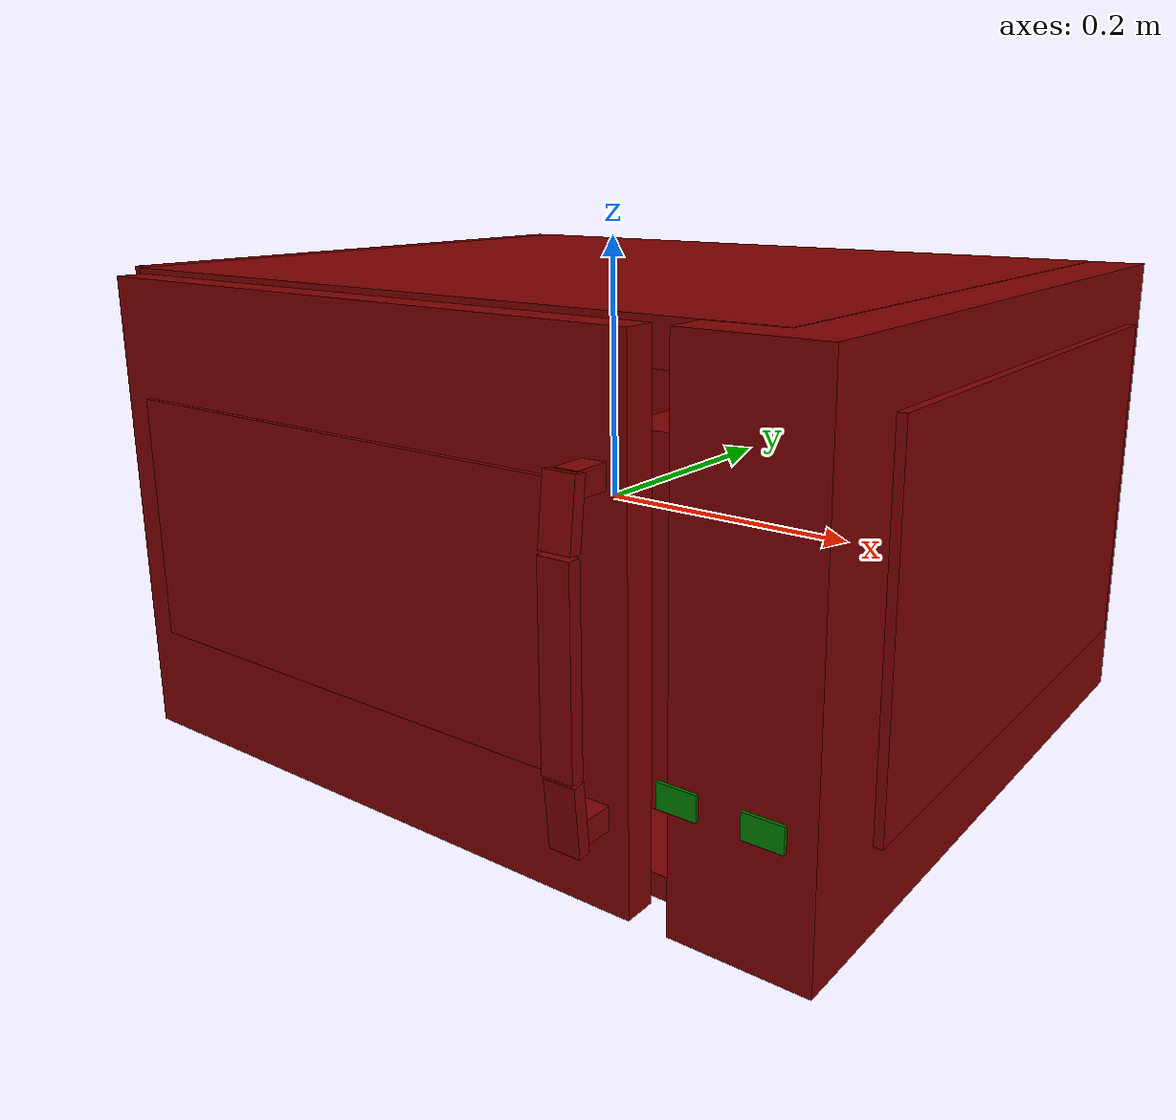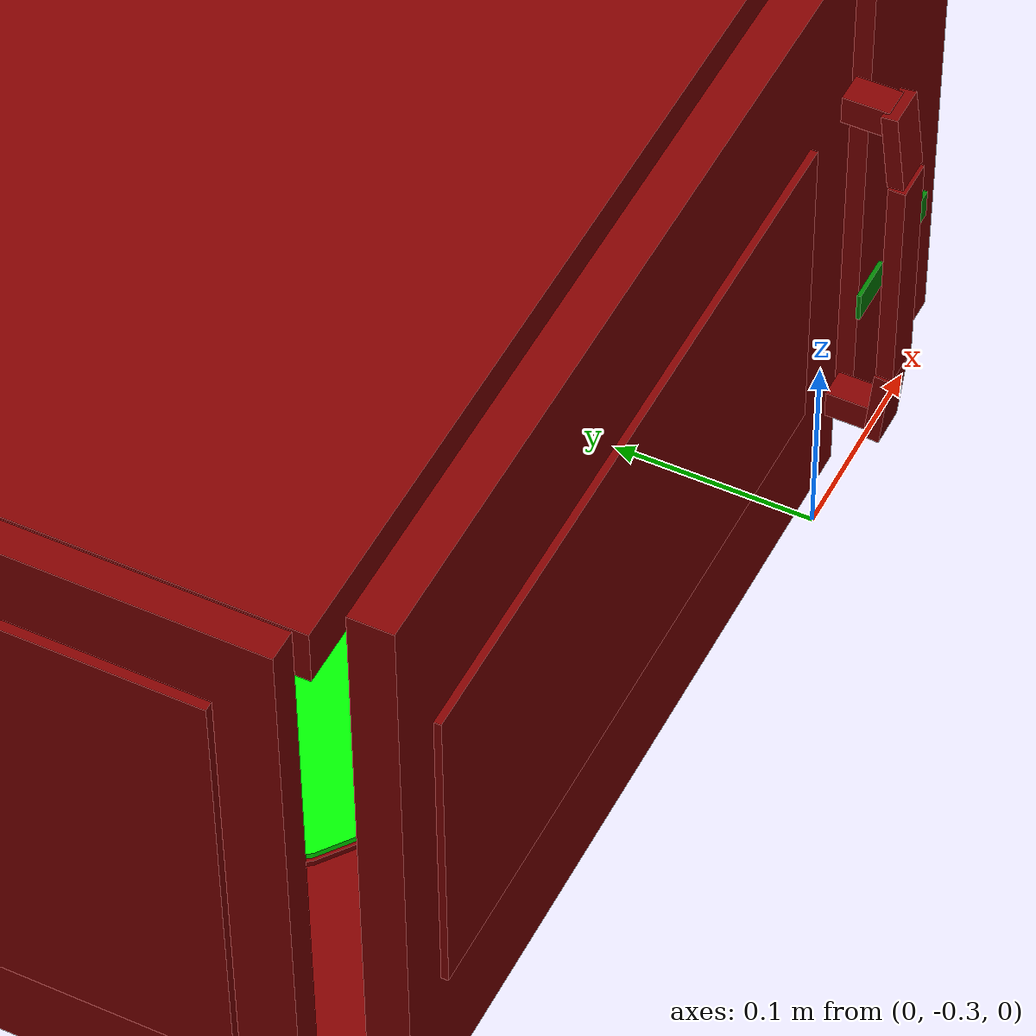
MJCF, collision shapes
<?xml version='1.0' encoding='UTF-8'?>
<mujoco model="model">
  <option timestep="0.002" gravity="0.0 0.0 -9.81"/>
  <compiler angle="radian"/>
  <asset>
    <mesh file="visuals/door.obj" name="door_vis"/>
    <mesh file="visuals/door_Clear.obj" name="door_Clear_vis"/>
    <mesh file="visuals/Body001.obj" name="Body001_vis"/>
    <mesh file="visuals/Disc001.obj" name="Disc001_vis"/>
    <texture file="visuals/T_BC001.png" name="Body001_material" type="2d"/>
    <material name="Body001_material" rgba="1 1 1 1.0" texture="Body001_material" shininess="0.5" specular="2"/>
    <texture file="visuals/T_BC001.png" name="door_material" type="2d"/>
    <material name="door_material" rgba="1 1 1 1.0" texture="door_material" shininess="0.5" specular="2"/>
    <texture file="visuals/T_BC001.png" name="door_Clear_material" type="2d"/>
    <material name="door_Clear_material" rgba="1 1 1 0.699999988079071" texture="door_Clear_material" shininess="0.5" specular="1"/>
    <texture file="visuals/T_BC001.png" name="Disc001_material" type="2d"/>
    <material name="Disc001_material" rgba="1 1 1 1.0" texture="Disc001_material" shininess="0.5" specular="2"/>
  </asset>
  <default>
    <default class="visual">
      <geom conaffinity="0" contype="0" group="1" type="mesh"/>
    </default>
    <default class="collision">
      <geom group="0" rgba="0.5 0 0 0.5"/>
    </default>
    <default class="spawn">
      <geom group="0" rgba="1 1 1 0.5" contype="0" conaffinity="0"/>
      <site group="0" rgba="1 1 1 0.5"/>
    </default>
    <default class="region">
      <geom group="1" conaffinity="0" contype="0" rgba="0 1 0 0"/>
    </default>
  </default>
  <worldbody>
    <body>
      <body name="object">
        <geom class="collision" type="cylinder" pos="-0.05468723 -0.01058693 -0.14799659" size="0.16692419350147247 0.0016871257685124874" quat="1.0 0.0 0.0 0.0" name="tray" rgba="0 1 0 0.5"/>
        <geom class="collision" type="box" pos="0.27547468 -0.23399280 -0.08502374" size="0.013391491957008839 0.0010977822821587324 0.008388223126530647" quat="1.0 0.0 0.0 0.0" name="start_button" rgba="0.0 0.5 0 0.5"/>
        <geom class="collision" type="box" pos="0.22040416 -0.23399280 -0.08502374" size="0.01339150220155716 0.0010977822821587324 0.008388223126530647" quat="1.0 0.0 0.0 0.0" name="stop_button" rgba="0.0 0.5 0 0.5"/>
        <geom mesh="Body001_vis" type="mesh" solimp="0.998 0.998 0.001" solref="0.001 1" friction="0.95 0.3 0.1" class="visual" material="Body001_material"/>
        <geom class="collision" type="box" pos="-0.01199733 0.03515721 0.16092911" size="0.2781570553779602 0.2375412881374359 0.014522206969559193" quat="1.0 0.0 0.0 0.0"/>
        <geom class="collision" type="box" pos="-0.04028525 0.03515726 -0.16748843" size="0.25267335772514343 0.23754151165485382 0.00814619567245245" quat="1.0 0.0 0.0 0.0"/>
        <geom class="collision" type="box" pos="-0.29934488 0.03930693 -0.00003569" size="0.008127178996801376 0.2345574051141739 0.17521588504314423" quat="1.0 0.0 0.0 0.0"/>
        <geom class="collision" type="box" pos="-0.30557646 0.04019809 0.00776376" size="0.00692749535664916 0.20491495728492737 0.1239769384264946" quat="1.0 0.0 0.0 0.0"/>
        <geom class="collision" type="box" pos="0.25932936 0.02196794 -0.00003567" size="0.04693977162241936 0.25341349840164185 0.17521433532238007" quat="1.0 0.0 0.0 0.0"/>
        <geom class="collision" type="box" pos="0.30582093 0.04019809 0.00776376" size="0.006695611868053675 0.20491527020931244 0.12397713214159012" quat="1.0 0.0 0.0 0.0"/>
        <geom class="collision" type="box" pos="-0.01947560 0.22568462 -0.00067893" size="0.28539082407951355 0.05013616383075714 0.17457124590873718" quat="1.0 0.0 0.0 0.0"/>
        <geom class="collision" type="box" pos="0.18414085 -0.01299822 -0.00273758" size="0.02824878878891468 0.1878320723772049 0.11487241089344025" quat="1.0 0.0 0.0 0.0"/>
        <body name="door">
          <joint axis="0.0 0.0 1.0" pos="-0.28508385 -0.22319469 -0.00506721" limited="true" name="microjoint" range="-1.5707963267948966 0.0" type="hinge" damping="1" frictionloss="1" armature=".01" stiffness="0.05"/>
          <geom mesh="door_vis" type="mesh" solimp="0.998 0.998 0.001" solref="0.001 1" friction="0.95 0.3 0.1" class="visual" material="door_material"/>
          <geom class="collision" type="box" pos="-0.04323483 -0.22098480 -0.00128351" size="0.22930869460105896 0.011220528744161129 0.17378352582454681" quat="1.0 0.0 0.0 0.0" name="door_main"/>
          <geom class="collision" type="box" pos="-0.05357160 -0.23522090 -0.00366319" size="0.19063909351825714 0.0018959838198497891 0.09010432660579681" quat="1.0 0.0 0.0 0.0"/>
          <geom class="collision" type="box" pos="0.16861270 -0.25005739 0.09338046" size="0.008060113526880741 0.012087414041161537 0.007869666442275047" quat="1.0 0.0 0.0 0.0"/>
          <geom class="collision" type="box" pos="0.16861270 -0.25005739 -0.10834935" size="0.008060119114816189 0.012087421491742134 0.007869672030210495" quat="1.0 0.0 0.0 0.0"/>
          <geom class="collision" type="box" pos="0.16861270 -0.26585298 0.07919264" size="0.011003851890563965 0.02170410566031933 0.0042842356488108635" quat="0.6625279188156128 -0.7490372061729431 -1.6631969698859998e-16 8.487738654533709e-24"/>
          <geom class="collision" type="box" pos="0.16861270 -0.26932983 -0.00796175" size="0.011003851890563965 0.004525520373135805 0.06377788633108139" quat="1.0 0.0 0.0 0.0" name="door_handle_main"/>
          <geom class="collision" type="box" pos="0.16861270 -0.26626222 -0.09602845" size="0.011003851890563965 0.02266821824014187 0.0042842356488108635" quat="0.7379992604255676 -0.6748015284538269 -1.4983606525811687e-16 2.1780897666146301e-23"/>
          <body name="door_Clear">
            <geom mesh="door_Clear_vis" type="mesh" solimp="0.998 0.998 0.001" solref="0.001 1" friction="0.95 0.3 0.1" class="visual" material="door_Clear_material"/>
            <geom class="collision" type="box" pos="-0.05357160 -0.23522090 -0.00366319" size="0.19063909351825714 0.0018959838198497891 0.09010432660579681" quat="1.0 0.0 0.0 0.0"/>
          </body>
        </body>
        <body name="Disc001">
          <joint axis="0.0 0.0 1.0" pos="-0.05456707 -0.01058821 -0.15472470" limited="false" name="Disc001_joint" range="0 360" type="hinge" damping="1" frictionloss="1" armature=".01" stiffness="0.05"/>
          <geom mesh="Disc001_vis" type="mesh" solimp="0.998 0.998 0.001" solref="0.001 1" friction="0.95 0.3 0.1" class="visual" material="Disc001_material"/>
          <geom class="collision" type="cylinder" pos="-0.05468723 -0.01058693 -0.15364919" size="0.16692419350147247 0.0016871365951374173" quat="1.0 0.0 0.0 0.0"/>
        </body>
        <geom class="region" name="reg_int" type="box" pos="-0.06875119 -0.015883660000000008 -0.0005967299999999898" size="0.22136246999999998 0.18750304 0.14671275"/>
        <geom class="region" name="reg_main" type="box" pos="-5.000000000143778e-08 0.019406564999999987 4.800000000110272e-07" size="0.31600024000000004 0.259092465 0.17850001"/>
      <geom class="region" name="reg_tray" type="cylinder" pos="-0.05468723 -0.01058693 -9.672211574375533e-05" size="0.16692419350147247 0.14521274211574375"/></body>
    </body>
  </worldbody>
  <actuator>
    <motor name="microjoint_actuator" joint="microjoint" gear="10"/>
    <motor name="Disc001_joint_actuator" joint="Disc001_joint" gear="20"/>
  </actuator>
</mujoco>
